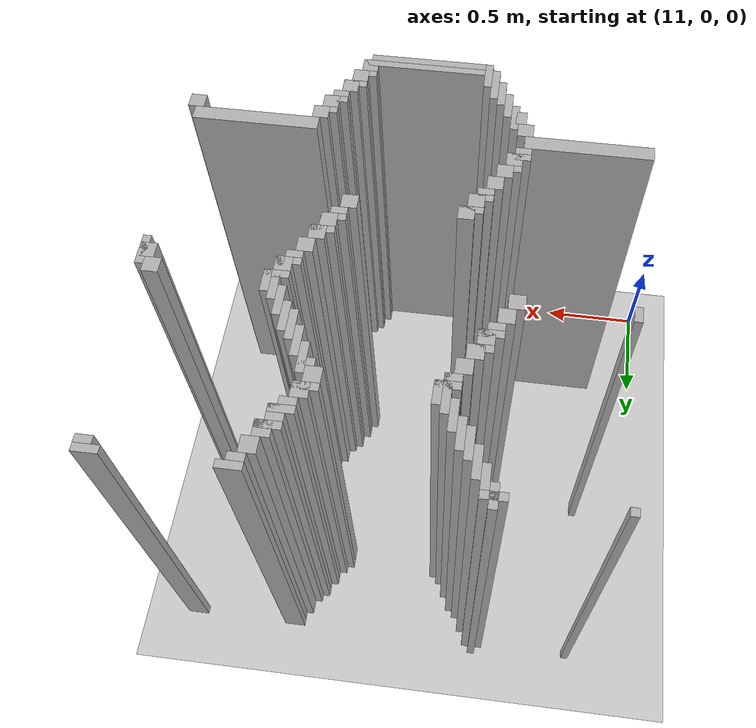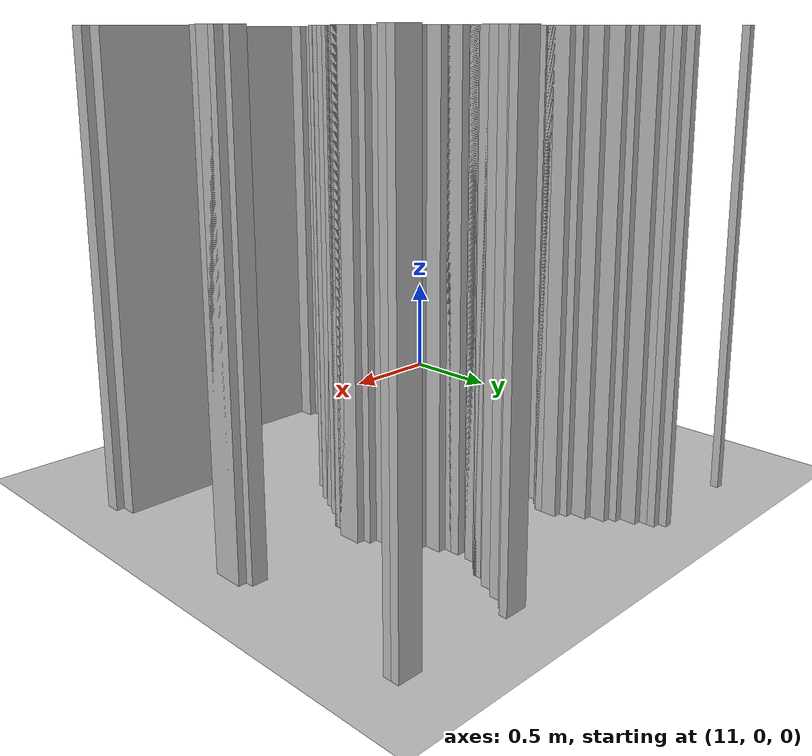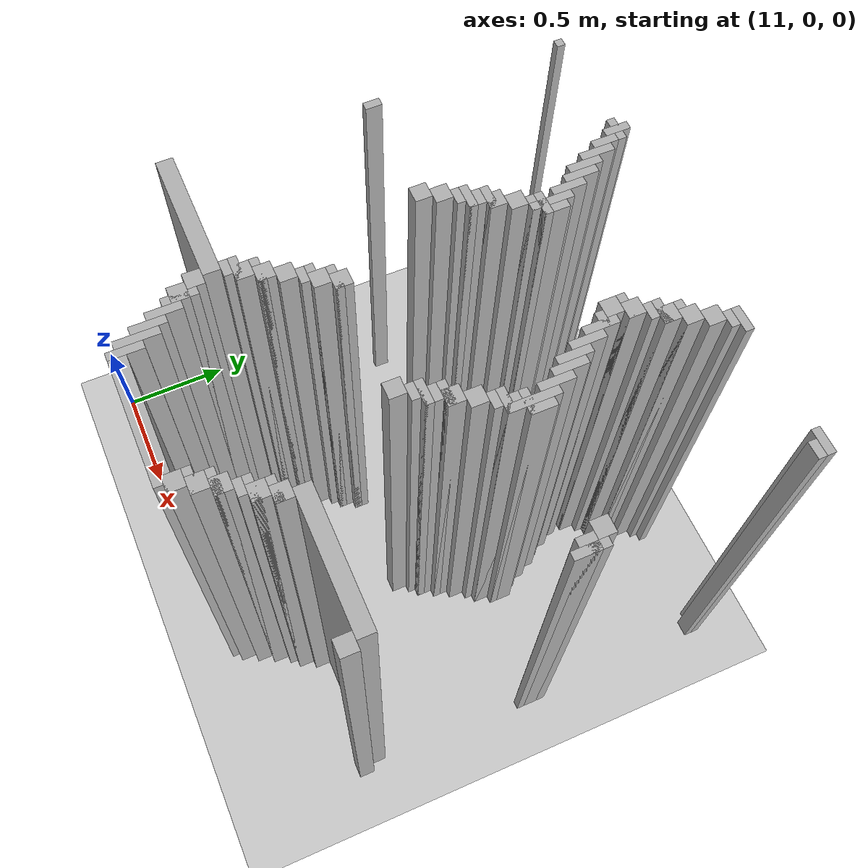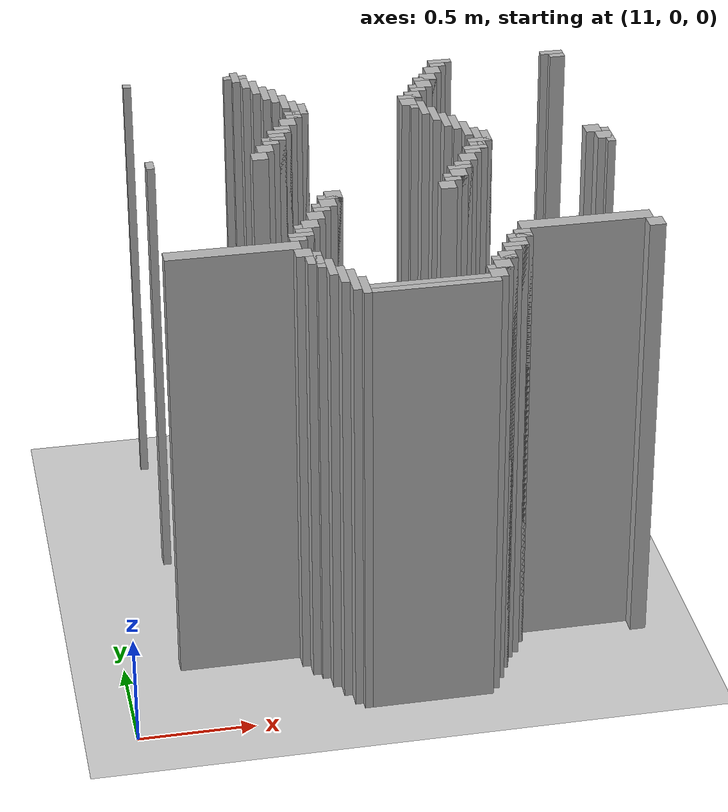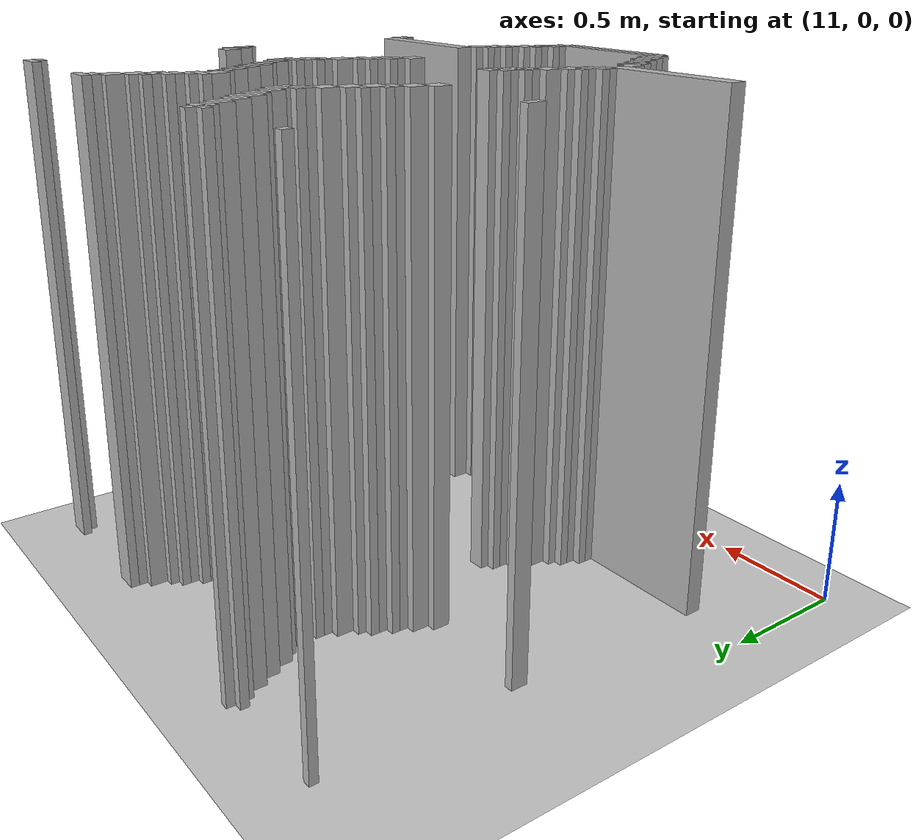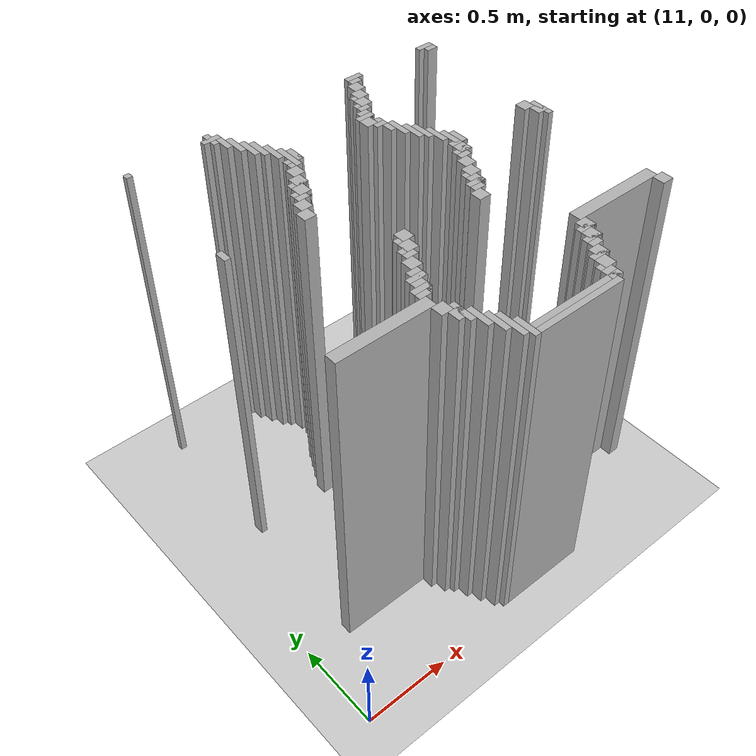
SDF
<sdf version="1.6">
 <world name="slam_world">
  <model name="ground_plane">
   <static>true</static>
   <link name="link">
    <collision name="collision">
     <geometry><plane><normal>0 0 1</normal><size>100 100</size></plane></geometry>
    </collision>
    <visual name="visual">
     <geometry><plane><normal>0 0 1</normal><size>100 100</size></plane></geometry>
     <material>
      <ambient>0.8 0.8 0.8 1</ambient>
      <diffuse>0.8 0.8 0.8 1</diffuse>
      <specular>0.8 0.8 0.8 1</specular>
     </material>
    </visual>
   </link>
  </model>
  <model name="wall_5012">
   <static>true</static>
   <pose>11.780742459396752 2.140371229698376 1.0 0 0 0</pose>
   <link name="link">
    <collision name="collision">
     <geometry><box><size>0.03480278422273782 0.10440835266821345 2.0</size></box></geometry>
    </collision>
    <visual name="visual">
     <geometry><box><size>0.03480278422273782 0.10440835266821345 2.0</size></box></geometry>
     <material><ambient>0.5 0.5 0.5 1</ambient><diffuse>0.7 0.7 0.7 1</diffuse></material>
    </visual>
   </link>
  </model>
  <model name="wall_5026">
   <static>true</static>
   <pose>11.293503480278423 2.140371229698376 1.0 0 0 0</pose>
   <link name="link">
    <collision name="collision">
     <geometry><box><size>0.03480278422273782 0.03480278422273782 2.0</size></box></geometry>
    </collision>
    <visual name="visual">
     <geometry><box><size>0.03480278422273782 0.03480278422273782 2.0</size></box></geometry>
     <material><ambient>0.5 0.5 0.5 1</ambient><diffuse>0.7 0.7 0.7 1</diffuse></material>
    </visual>
   </link>
  </model>
  <model name="wall_5027">
   <static>true</static>
   <pose>11.780742459396752 2.140371229698376 1.0 0 0 0</pose>
   <link name="link">
    <collision name="collision">
     <geometry><box><size>0.10440835266821345 0.03480278422273782 2.0</size></box></geometry>
    </collision>
    <visual name="visual">
     <geometry><box><size>0.10440835266821345 0.03480278422273782 2.0</size></box></geometry>
     <material><ambient>0.5 0.5 0.5 1</ambient><diffuse>0.7 0.7 0.7 1</diffuse></material>
    </visual>
   </link>
  </model>
  <model name="wall_5028">
   <static>true</static>
   <pose>12.720417633410673 2.140371229698376 1.0 0 0 0</pose>
   <link name="link">
    <collision name="collision">
     <geometry><box><size>0.10440835266821345 0.03480278422273782 2.0</size></box></geometry>
    </collision>
    <visual name="visual">
     <geometry><box><size>0.10440835266821345 0.03480278422273782 2.0</size></box></geometry>
     <material><ambient>0.5 0.5 0.5 1</ambient><diffuse>0.7 0.7 0.7 1</diffuse></material>
    </visual>
   </link>
  </model>
  <model name="wall_5029">
   <static>true</static>
   <pose>13.24245939675174 2.140371229698376 1.0 0 0 0</pose>
   <link name="link">
    <collision name="collision">
     <geometry><box><size>0.10440835266821345 0.03480278422273782 2.0</size></box></geometry>
    </collision>
    <visual name="visual">
     <geometry><box><size>0.10440835266821345 0.03480278422273782 2.0</size></box></geometry>
     <material><ambient>0.5 0.5 0.5 1</ambient><diffuse>0.7 0.7 0.7 1</diffuse></material>
    </visual>
   </link>
  </model>
  <model name="wall_5040">
   <static>true</static>
   <pose>11.81554524361949 2.0707656612529 1.0 0 0 0</pose>
   <link name="link">
    <collision name="collision">
     <geometry><box><size>0.03480278422273782 0.10440835266821345 2.0</size></box></geometry>
    </collision>
    <visual name="visual">
     <geometry><box><size>0.03480278422273782 0.10440835266821345 2.0</size></box></geometry>
     <material><ambient>0.5 0.5 0.5 1</ambient><diffuse>0.7 0.7 0.7 1</diffuse></material>
    </visual>
   </link>
  </model>
  <model name="wall_5041">
   <static>true</static>
   <pose>12.703016241299304 2.105568445475638 1.0 0 0 0</pose>
   <link name="link">
    <collision name="collision">
     <geometry><box><size>0.06960556844547564 0.03480278422273782 2.0</size></box></geometry>
    </collision>
    <visual name="visual">
     <geometry><box><size>0.06960556844547564 0.03480278422273782 2.0</size></box></geometry>
     <material><ambient>0.5 0.5 0.5 1</ambient><diffuse>0.7 0.7 0.7 1</diffuse></material>
    </visual>
   </link>
  </model>
  <model name="wall_5042">
   <static>true</static>
   <pose>13.259860788863108 2.105568445475638 1.0 0 0 0</pose>
   <link name="link">
    <collision name="collision">
     <geometry><box><size>0.06960556844547564 0.03480278422273782 2.0</size></box></geometry>
    </collision>
    <visual name="visual">
     <geometry><box><size>0.06960556844547564 0.03480278422273782 2.0</size></box></geometry>
     <material><ambient>0.5 0.5 0.5 1</ambient><diffuse>0.7 0.7 0.7 1</diffuse></material>
    </visual>
   </link>
  </model>
  <model name="wall_5053">
   <static>true</static>
   <pose>11.850348027842227 2.0185614849187936 1.0 0 0 0</pose>
   <link name="link">
    <collision name="collision">
     <geometry><box><size>0.03480278422273782 0.13921113689095127 2.0</size></box></geometry>
    </collision>
    <visual name="visual">
     <geometry><box><size>0.03480278422273782 0.13921113689095127 2.0</size></box></geometry>
     <material><ambient>0.5 0.5 0.5 1</ambient><diffuse>0.7 0.7 0.7 1</diffuse></material>
    </visual>
   </link>
  </model>
  <model name="wall_5054">
   <static>true</static>
   <pose>12.668213457076565 2.053364269141531 1.0 0 0 0</pose>
   <link name="link">
    <collision name="collision">
     <geometry><box><size>0.06960556844547564 0.06960556844547564 2.0</size></box></geometry>
    </collision>
    <visual name="visual">
     <geometry><box><size>0.06960556844547564 0.06960556844547564 2.0</size></box></geometry>
     <material><ambient>0.5 0.5 0.5 1</ambient><diffuse>0.7 0.7 0.7 1</diffuse></material>
    </visual>
   </link>
  </model>
  <model name="wall_5066">
   <static>true</static>
   <pose>11.885150812064964 1.948955916473318 1.0 0 0 0</pose>
   <link name="link">
    <collision name="collision">
     <geometry><box><size>0.03480278422273782 0.13921113689095127 2.0</size></box></geometry>
    </collision>
    <visual name="visual">
     <geometry><box><size>0.03480278422273782 0.13921113689095127 2.0</size></box></geometry>
     <material><ambient>0.5 0.5 0.5 1</ambient><diffuse>0.7 0.7 0.7 1</diffuse></material>
    </visual>
   </link>
  </model>
  <model name="wall_5067">
   <static>true</static>
   <pose>12.633410672853827 1.9837587006960555 1.0 0 0 0</pose>
   <link name="link">
    <collision name="collision">
     <geometry><box><size>0.06960556844547564 0.06960556844547564 2.0</size></box></geometry>
    </collision>
    <visual name="visual">
     <geometry><box><size>0.06960556844547564 0.06960556844547564 2.0</size></box></geometry>
     <material><ambient>0.5 0.5 0.5 1</ambient><diffuse>0.7 0.7 0.7 1</diffuse></material>
    </visual>
   </link>
  </model>
  <model name="wall_5079">
   <static>true</static>
   <pose>11.919953596287703 1.91415313225058 1.0 0 0 0</pose>
   <link name="link">
    <collision name="collision">
     <geometry><box><size>0.03480278422273782 0.13921113689095127 2.0</size></box></geometry>
    </collision>
    <visual name="visual">
     <geometry><box><size>0.03480278422273782 0.13921113689095127 2.0</size></box></geometry>
     <material><ambient>0.5 0.5 0.5 1</ambient><diffuse>0.7 0.7 0.7 1</diffuse></material>
    </visual>
   </link>
  </model>
  <model name="wall_5080">
   <static>true</static>
   <pose>12.616009280742459 1.9663573085846866 1.0 0 0 0</pose>
   <link name="link">
    <collision name="collision">
     <geometry><box><size>0.10440835266821345 0.03480278422273782 2.0</size></box></geometry>
    </collision>
    <visual name="visual">
     <geometry><box><size>0.10440835266821345 0.03480278422273782 2.0</size></box></geometry>
     <material><ambient>0.5 0.5 0.5 1</ambient><diffuse>0.7 0.7 0.7 1</diffuse></material>
    </visual>
   </link>
  </model>
  <model name="wall_5090">
   <static>true</static>
   <pose>12.59860788863109 1.91415313225058 1.0 0 0 0</pose>
   <link name="link">
    <collision name="collision">
     <geometry><box><size>0.06960556844547564 0.06960556844547564 2.0</size></box></geometry>
    </collision>
    <visual name="visual">
     <geometry><box><size>0.06960556844547564 0.06960556844547564 2.0</size></box></geometry>
     <material><ambient>0.5 0.5 0.5 1</ambient><diffuse>0.7 0.7 0.7 1</diffuse></material>
    </visual>
   </link>
  </model>
  <model name="wall_5102">
   <static>true</static>
   <pose>11.95475638051044 1.8445475638051043 1.0 0 0 0</pose>
   <link name="link">
    <collision name="collision">
     <geometry><box><size>0.03480278422273782 0.13921113689095127 2.0</size></box></geometry>
    </collision>
    <visual name="visual">
     <geometry><box><size>0.03480278422273782 0.13921113689095127 2.0</size></box></geometry>
     <material><ambient>0.5 0.5 0.5 1</ambient><diffuse>0.7 0.7 0.7 1</diffuse></material>
    </visual>
   </link>
  </model>
  <model name="wall_5103">
   <static>true</static>
   <pose>12.581206496519721 1.896751740139211 1.0 0 0 0</pose>
   <link name="link">
    <collision name="collision">
     <geometry><box><size>0.10440835266821345 0.03480278422273782 2.0</size></box></geometry>
    </collision>
    <visual name="visual">
     <geometry><box><size>0.10440835266821345 0.03480278422273782 2.0</size></box></geometry>
     <material><ambient>0.5 0.5 0.5 1</ambient><diffuse>0.7 0.7 0.7 1</diffuse></material>
    </visual>
   </link>
  </model>
  <model name="wall_5111">
   <static>true</static>
   <pose>12.563805104408353 1.8619489559164732 1.0 0 0 0</pose>
   <link name="link">
    <collision name="collision">
     <geometry><box><size>0.06960556844547564 0.03480278422273782 2.0</size></box></geometry>
    </collision>
    <visual name="visual">
     <geometry><box><size>0.06960556844547564 0.03480278422273782 2.0</size></box></geometry>
     <material><ambient>0.5 0.5 0.5 1</ambient><diffuse>0.7 0.7 0.7 1</diffuse></material>
    </visual>
   </link>
  </model>
  <model name="wall_5121">
   <static>true</static>
   <pose>11.989559164733178 1.75754060324826 1.0 0 0 0</pose>
   <link name="link">
    <collision name="collision">
     <geometry><box><size>0.03480278422273782 0.17401392111368907 2.0</size></box></geometry>
    </collision>
    <visual name="visual">
     <geometry><box><size>0.03480278422273782 0.17401392111368907 2.0</size></box></geometry>
     <material><ambient>0.5 0.5 0.5 1</ambient><diffuse>0.7 0.7 0.7 1</diffuse></material>
    </visual>
   </link>
  </model>
  <model name="wall_5122">
   <static>true</static>
   <pose>12.529002320185615 1.8097447795823665 1.0 0 0 0</pose>
   <link name="link">
    <collision name="collision">
     <geometry><box><size>0.06960556844547564 0.06960556844547564 2.0</size></box></geometry>
    </collision>
    <visual name="visual">
     <geometry><box><size>0.06960556844547564 0.06960556844547564 2.0</size></box></geometry>
     <material><ambient>0.5 0.5 0.5 1</ambient><diffuse>0.7 0.7 0.7 1</diffuse></material>
    </visual>
   </link>
  </model>
  <model name="wall_5134">
   <static>true</static>
   <pose>12.024361948955915 1.75754060324826 1.0 0 0 0</pose>
   <link name="link">
    <collision name="collision">
     <geometry><box><size>0.03480278422273782 0.10440835266821345 2.0</size></box></geometry>
    </collision>
    <visual name="visual">
     <geometry><box><size>0.03480278422273782 0.10440835266821345 2.0</size></box></geometry>
     <material><ambient>0.5 0.5 0.5 1</ambient><diffuse>0.7 0.7 0.7 1</diffuse></material>
    </visual>
   </link>
  </model>
  <model name="wall_5135">
   <static>true</static>
   <pose>12.511600928074245 1.7923433874709975 1.0 0 0 0</pose>
   <link name="link">
    <collision name="collision">
     <geometry><box><size>0.10440835266821345 0.03480278422273782 2.0</size></box></geometry>
    </collision>
    <visual name="visual">
     <geometry><box><size>0.10440835266821345 0.03480278422273782 2.0</size></box></geometry>
     <material><ambient>0.5 0.5 0.5 1</ambient><diffuse>0.7 0.7 0.7 1</diffuse></material>
    </visual>
   </link>
  </model>
  <model name="wall_5147">
   <static>true</static>
   <pose>12.494199535962876 1.740139211136891 1.0 0 0 0</pose>
   <link name="link">
    <collision name="collision">
     <geometry><box><size>0.06960556844547564 0.06960556844547564 2.0</size></box></geometry>
    </collision>
    <visual name="visual">
     <geometry><box><size>0.06960556844547564 0.06960556844547564 2.0</size></box></geometry>
     <material><ambient>0.5 0.5 0.5 1</ambient><diffuse>0.7 0.7 0.7 1</diffuse></material>
    </visual>
   </link>
  </model>
  <model name="wall_5158">
   <static>true</static>
   <pose>11.989559164733178 1.722737819025522 1.0 0 0 0</pose>
   <link name="link">
    <collision name="collision">
     <geometry><box><size>0.10440835266821345 0.03480278422273782 2.0</size></box></geometry>
    </collision>
    <visual name="visual">
     <geometry><box><size>0.10440835266821345 0.03480278422273782 2.0</size></box></geometry>
     <material><ambient>0.5 0.5 0.5 1</ambient><diffuse>0.7 0.7 0.7 1</diffuse></material>
    </visual>
   </link>
  </model>
  <model name="wall_5159">
   <static>true</static>
   <pose>12.546403712296984 1.6705336426914152 1.0 0 0 0</pose>
   <link name="link">
    <collision name="collision">
     <geometry><box><size>0.03480278422273782 0.13921113689095127 2.0</size></box></geometry>
    </collision>
    <visual name="visual">
     <geometry><box><size>0.03480278422273782 0.13921113689095127 2.0</size></box></geometry>
     <material><ambient>0.5 0.5 0.5 1</ambient><diffuse>0.7 0.7 0.7 1</diffuse></material>
    </visual>
   </link>
  </model>
  <model name="wall_5174">
   <static>true</static>
   <pose>11.97215777262181 1.6879350348027842 1.0 0 0 0</pose>
   <link name="link">
    <collision name="collision">
     <geometry><box><size>0.06960556844547564 0.03480278422273782 2.0</size></box></geometry>
    </collision>
    <visual name="visual">
     <geometry><box><size>0.06960556844547564 0.03480278422273782 2.0</size></box></geometry>
     <material><ambient>0.5 0.5 0.5 1</ambient><diffuse>0.7 0.7 0.7 1</diffuse></material>
    </visual>
   </link>
  </model>
  <model name="wall_5175">
   <static>true</static>
   <pose>12.529002320185615 1.6879350348027842 1.0 0 0 0</pose>
   <link name="link">
    <collision name="collision">
     <geometry><box><size>0.06960556844547564 0.03480278422273782 2.0</size></box></geometry>
    </collision>
    <visual name="visual">
     <geometry><box><size>0.06960556844547564 0.03480278422273782 2.0</size></box></geometry>
     <material><ambient>0.5 0.5 0.5 1</ambient><diffuse>0.7 0.7 0.7 1</diffuse></material>
    </visual>
   </link>
  </model>
  <model name="wall_5190">
   <static>true</static>
   <pose>11.937354988399072 1.6357308584686774 1.0 0 0 0</pose>
   <link name="link">
    <collision name="collision">
     <geometry><box><size>0.06960556844547564 0.06960556844547564 2.0</size></box></geometry>
    </collision>
    <visual name="visual">
     <geometry><box><size>0.06960556844547564 0.06960556844547564 2.0</size></box></geometry>
     <material><ambient>0.5 0.5 0.5 1</ambient><diffuse>0.7 0.7 0.7 1</diffuse></material>
    </visual>
   </link>
  </model>
  <model name="wall_5191">
   <static>true</static>
   <pose>12.581206496519721 1.6009280742459395 1.0 0 0 0</pose>
   <link name="link">
    <collision name="collision">
     <geometry><box><size>0.03480278422273782 0.13921113689095127 2.0</size></box></geometry>
    </collision>
    <visual name="visual">
     <geometry><box><size>0.03480278422273782 0.13921113689095127 2.0</size></box></geometry>
     <material><ambient>0.5 0.5 0.5 1</ambient><diffuse>0.7 0.7 0.7 1</diffuse></material>
    </visual>
   </link>
  </model>
  <model name="wall_5206">
   <static>true</static>
   <pose>11.902552204176333 1.5661252900232019 1.0 0 0 0</pose>
   <link name="link">
    <collision name="collision">
     <geometry><box><size>0.06960556844547564 0.06960556844547564 2.0</size></box></geometry>
    </collision>
    <visual name="visual">
     <geometry><box><size>0.06960556844547564 0.06960556844547564 2.0</size></box></geometry>
     <material><ambient>0.5 0.5 0.5 1</ambient><diffuse>0.7 0.7 0.7 1</diffuse></material>
    </visual>
   </link>
  </model>
  <model name="wall_5207">
   <static>true</static>
   <pose>12.616009280742459 1.531322505800464 1.0 0 0 0</pose>
   <link name="link">
    <collision name="collision">
     <geometry><box><size>0.03480278422273782 0.13921113689095127 2.0</size></box></geometry>
    </collision>
    <visual name="visual">
     <geometry><box><size>0.03480278422273782 0.13921113689095127 2.0</size></box></geometry>
     <material><ambient>0.5 0.5 0.5 1</ambient><diffuse>0.7 0.7 0.7 1</diffuse></material>
    </visual>
   </link>
  </model>
  <model name="wall_5222">
   <static>true</static>
   <pose>11.885150812064964 1.548723897911833 1.0 0 0 0</pose>
   <link name="link">
    <collision name="collision">
     <geometry><box><size>0.10440835266821345 0.03480278422273782 2.0</size></box></geometry>
    </collision>
    <visual name="visual">
     <geometry><box><size>0.10440835266821345 0.03480278422273782 2.0</size></box></geometry>
     <material><ambient>0.5 0.5 0.5 1</ambient><diffuse>0.7 0.7 0.7 1</diffuse></material>
    </visual>
   </link>
  </model>
  <model name="wall_5223">
   <static>true</static>
   <pose>12.650812064965196 1.4965197215777262 1.0 0 0 0</pose>
   <link name="link">
    <collision name="collision">
     <geometry><box><size>0.03480278422273782 0.13921113689095127 2.0</size></box></geometry>
    </collision>
    <visual name="visual">
     <geometry><box><size>0.03480278422273782 0.13921113689095127 2.0</size></box></geometry>
     <material><ambient>0.5 0.5 0.5 1</ambient><diffuse>0.7 0.7 0.7 1</diffuse></material>
    </visual>
   </link>
  </model>
  <model name="wall_5237">
   <static>true</static>
   <pose>11.867749419953595 1.4965197215777262 1.0 0 0 0</pose>
   <link name="link">
    <collision name="collision">
     <geometry><box><size>0.06960556844547564 0.06960556844547564 2.0</size></box></geometry>
    </collision>
    <visual name="visual">
     <geometry><box><size>0.06960556844547564 0.06960556844547564 2.0</size></box></geometry>
     <material><ambient>0.5 0.5 0.5 1</ambient><diffuse>0.7 0.7 0.7 1</diffuse></material>
    </visual>
   </link>
  </model>
  <model name="wall_5251">
   <static>true</static>
   <pose>11.850348027842227 1.4791183294663572 1.0 0 0 0</pose>
   <link name="link">
    <collision name="collision">
     <geometry><box><size>0.10440835266821345 0.03480278422273782 2.0</size></box></geometry>
    </collision>
    <visual name="visual">
     <geometry><box><size>0.10440835266821345 0.03480278422273782 2.0</size></box></geometry>
     <material><ambient>0.5 0.5 0.5 1</ambient><diffuse>0.7 0.7 0.7 1</diffuse></material>
    </visual>
   </link>
  </model>
  <model name="wall_5252">
   <static>true</static>
   <pose>12.685614849187935 1.4269141531322505 1.0 0 0 0</pose>
   <link name="link">
    <collision name="collision">
     <geometry><box><size>0.03480278422273782 0.13921113689095127 2.0</size></box></geometry>
    </collision>
    <visual name="visual">
     <geometry><box><size>0.03480278422273782 0.13921113689095127 2.0</size></box></geometry>
     <material><ambient>0.5 0.5 0.5 1</ambient><diffuse>0.7 0.7 0.7 1</diffuse></material>
    </visual>
   </link>
  </model>
  <model name="wall_5263">
   <static>true</static>
   <pose>11.832946635730858 1.4443155452436194 1.0 0 0 0</pose>
   <link name="link">
    <collision name="collision">
     <geometry><box><size>0.06960556844547564 0.03480278422273782 2.0</size></box></geometry>
    </collision>
    <visual name="visual">
     <geometry><box><size>0.06960556844547564 0.03480278422273782 2.0</size></box></geometry>
     <material><ambient>0.5 0.5 0.5 1</ambient><diffuse>0.7 0.7 0.7 1</diffuse></material>
    </visual>
   </link>
  </model>
  <model name="wall_5277">
   <static>true</static>
   <pose>11.79814385150812 1.3921113689095126 1.0 0 0 0</pose>
   <link name="link">
    <collision name="collision">
     <geometry><box><size>0.06960556844547564 0.06960556844547564 2.0</size></box></geometry>
    </collision>
    <visual name="visual">
     <geometry><box><size>0.06960556844547564 0.06960556844547564 2.0</size></box></geometry>
     <material><ambient>0.5 0.5 0.5 1</ambient><diffuse>0.7 0.7 0.7 1</diffuse></material>
    </visual>
   </link>
  </model>
  <model name="wall_5278">
   <static>true</static>
   <pose>12.720417633410673 1.322505800464037 1.0 0 0 0</pose>
   <link name="link">
    <collision name="collision">
     <geometry><box><size>0.03480278422273782 0.2088167053364269 2.0</size></box></geometry>
    </collision>
    <visual name="visual">
     <geometry><box><size>0.03480278422273782 0.2088167053364269 2.0</size></box></geometry>
     <material><ambient>0.5 0.5 0.5 1</ambient><diffuse>0.7 0.7 0.7 1</diffuse></material>
    </visual>
   </link>
  </model>
  <model name="wall_5290">
   <static>true</static>
   <pose>12.75522041763341 1.339907192575406 1.0 0 0 0</pose>
   <link name="link">
    <collision name="collision">
     <geometry><box><size>0.03480278422273782 0.10440835266821345 2.0</size></box></geometry>
    </collision>
    <visual name="visual">
     <geometry><box><size>0.03480278422273782 0.10440835266821345 2.0</size></box></geometry>
     <material><ambient>0.5 0.5 0.5 1</ambient><diffuse>0.7 0.7 0.7 1</diffuse></material>
    </visual>
   </link>
  </model>
  <model name="wall_5302">
   <static>true</static>
   <pose>11.293503480278423 1.322505800464037 1.0 0 0 0</pose>
   <link name="link">
    <collision name="collision">
     <geometry><box><size>0.03480278422273782 0.06960556844547564 2.0</size></box></geometry>
    </collision>
    <visual name="visual">
     <geometry><box><size>0.03480278422273782 0.06960556844547564 2.0</size></box></geometry>
     <material><ambient>0.5 0.5 0.5 1</ambient><diffuse>0.7 0.7 0.7 1</diffuse></material>
    </visual>
   </link>
  </model>
  <model name="wall_5303">
   <static>true</static>
   <pose>11.763341067285383 1.322505800464037 1.0 0 0 0</pose>
   <link name="link">
    <collision name="collision">
     <geometry><box><size>0.06960556844547564 0.06960556844547564 2.0</size></box></geometry>
    </collision>
    <visual name="visual">
     <geometry><box><size>0.06960556844547564 0.06960556844547564 2.0</size></box></geometry>
     <material><ambient>0.5 0.5 0.5 1</ambient><diffuse>0.7 0.7 0.7 1</diffuse></material>
    </visual>
   </link>
  </model>
  <model name="wall_5304">
   <static>true</static>
   <pose>13.22505800464037 1.322505800464037 1.0 0 0 0</pose>
   <link name="link">
    <collision name="collision">
     <geometry><box><size>0.06960556844547564 0.06960556844547564 2.0</size></box></geometry>
    </collision>
    <visual name="visual">
     <geometry><box><size>0.06960556844547564 0.06960556844547564 2.0</size></box></geometry>
     <material><ambient>0.5 0.5 0.5 1</ambient><diffuse>0.7 0.7 0.7 1</diffuse></material>
    </visual>
   </link>
  </model>
  <model name="wall_5314">
   <static>true</static>
   <pose>12.720417633410673 1.3051044083526682 1.0 0 0 0</pose>
   <link name="link">
    <collision name="collision">
     <geometry><box><size>0.10440835266821345 0.03480278422273782 2.0</size></box></geometry>
    </collision>
    <visual name="visual">
     <geometry><box><size>0.10440835266821345 0.03480278422273782 2.0</size></box></geometry>
     <material><ambient>0.5 0.5 0.5 1</ambient><diffuse>0.7 0.7 0.7 1</diffuse></material>
    </visual>
   </link>
  </model>
  <model name="wall_5315">
   <static>true</static>
   <pose>13.277262180974477 1.2529002320185614 1.0 0 0 0</pose>
   <link name="link">
    <collision name="collision">
     <geometry><box><size>0.03480278422273782 0.13921113689095127 2.0</size></box></geometry>
    </collision>
    <visual name="visual">
     <geometry><box><size>0.03480278422273782 0.13921113689095127 2.0</size></box></geometry>
     <material><ambient>0.5 0.5 0.5 1</ambient><diffuse>0.7 0.7 0.7 1</diffuse></material>
    </visual>
   </link>
  </model>
  <model name="wall_5327">
   <static>true</static>
   <pose>12.703016241299304 1.2529002320185614 1.0 0 0 0</pose>
   <link name="link">
    <collision name="collision">
     <geometry><box><size>0.06960556844547564 0.06960556844547564 2.0</size></box></geometry>
    </collision>
    <visual name="visual">
     <geometry><box><size>0.06960556844547564 0.06960556844547564 2.0</size></box></geometry>
     <material><ambient>0.5 0.5 0.5 1</ambient><diffuse>0.7 0.7 0.7 1</diffuse></material>
    </visual>
   </link>
  </model>
  <model name="wall_5328">
   <static>true</static>
   <pose>13.259860788863108 1.2529002320185614 1.0 0 0 0</pose>
   <link name="link">
    <collision name="collision">
     <geometry><box><size>0.06960556844547564 0.06960556844547564 2.0</size></box></geometry>
    </collision>
    <visual name="visual">
     <geometry><box><size>0.06960556844547564 0.06960556844547564 2.0</size></box></geometry>
     <material><ambient>0.5 0.5 0.5 1</ambient><diffuse>0.7 0.7 0.7 1</diffuse></material>
    </visual>
   </link>
  </model>
  <model name="wall_5341">
   <static>true</static>
   <pose>12.685614849187935 1.2354988399071924 1.0 0 0 0</pose>
   <link name="link">
    <collision name="collision">
     <geometry><box><size>0.10440835266821345 0.03480278422273782 2.0</size></box></geometry>
    </collision>
    <visual name="visual">
     <geometry><box><size>0.10440835266821345 0.03480278422273782 2.0</size></box></geometry>
     <material><ambient>0.5 0.5 0.5 1</ambient><diffuse>0.7 0.7 0.7 1</diffuse></material>
    </visual>
   </link>
  </model>
  <model name="wall_5351">
   <static>true</static>
   <pose>12.668213457076565 1.2006960556844548 1.0 0 0 0</pose>
   <link name="link">
    <collision name="collision">
     <geometry><box><size>0.06960556844547564 0.03480278422273782 2.0</size></box></geometry>
    </collision>
    <visual name="visual">
     <geometry><box><size>0.06960556844547564 0.03480278422273782 2.0</size></box></geometry>
     <material><ambient>0.5 0.5 0.5 1</ambient><diffuse>0.7 0.7 0.7 1</diffuse></material>
    </visual>
   </link>
  </model>
  <model name="wall_5364">
   <static>true</static>
   <pose>12.633410672853827 1.148491879350348 1.0 0 0 0</pose>
   <link name="link">
    <collision name="collision">
     <geometry><box><size>0.06960556844547564 0.06960556844547564 2.0</size></box></geometry>
    </collision>
    <visual name="visual">
     <geometry><box><size>0.06960556844547564 0.06960556844547564 2.0</size></box></geometry>
     <material><ambient>0.5 0.5 0.5 1</ambient><diffuse>0.7 0.7 0.7 1</diffuse></material>
    </visual>
   </link>
  </model>
  <model name="wall_5378">
   <static>true</static>
   <pose>12.59860788863109 1.0788863109048723 1.0 0 0 0</pose>
   <link name="link">
    <collision name="collision">
     <geometry><box><size>0.06960556844547564 0.06960556844547564 2.0</size></box></geometry>
    </collision>
    <visual name="visual">
     <geometry><box><size>0.06960556844547564 0.06960556844547564 2.0</size></box></geometry>
     <material><ambient>0.5 0.5 0.5 1</ambient><diffuse>0.7 0.7 0.7 1</diffuse></material>
    </visual>
   </link>
  </model>
  <model name="wall_5392">
   <static>true</static>
   <pose>12.581206496519721 1.0614849187935034 1.0 0 0 0</pose>
   <link name="link">
    <collision name="collision">
     <geometry><box><size>0.10440835266821345 0.03480278422273782 2.0</size></box></geometry>
    </collision>
    <visual name="visual">
     <geometry><box><size>0.10440835266821345 0.03480278422273782 2.0</size></box></geometry>
     <material><ambient>0.5 0.5 0.5 1</ambient><diffuse>0.7 0.7 0.7 1</diffuse></material>
    </visual>
   </link>
  </model>
  <model name="wall_5400">
   <static>true</static>
   <pose>12.563805104408353 1.0092807424593968 1.0 0 0 0</pose>
   <link name="link">
    <collision name="collision">
     <geometry><box><size>0.06960556844547564 0.06960556844547564 2.0</size></box></geometry>
    </collision>
    <visual name="visual">
     <geometry><box><size>0.06960556844547564 0.06960556844547564 2.0</size></box></geometry>
     <material><ambient>0.5 0.5 0.5 1</ambient><diffuse>0.7 0.7 0.7 1</diffuse></material>
    </visual>
   </link>
  </model>
  <model name="wall_5412">
   <static>true</static>
   <pose>12.546403712296984 0.9918793503480278 1.0 0 0 0</pose>
   <link name="link">
    <collision name="collision">
     <geometry><box><size>0.10440835266821345 0.03480278422273782 2.0</size></box></geometry>
    </collision>
    <visual name="visual">
     <geometry><box><size>0.10440835266821345 0.03480278422273782 2.0</size></box></geometry>
     <material><ambient>0.5 0.5 0.5 1</ambient><diffuse>0.7 0.7 0.7 1</diffuse></material>
    </visual>
   </link>
  </model>
  <model name="wall_5420">
   <static>true</static>
   <pose>12.529002320185615 0.95707656612529 1.0 0 0 0</pose>
   <link name="link">
    <collision name="collision">
     <geometry><box><size>0.06960556844547564 0.03480278422273782 2.0</size></box></geometry>
    </collision>
    <visual name="visual">
     <geometry><box><size>0.06960556844547564 0.03480278422273782 2.0</size></box></geometry>
     <material><ambient>0.5 0.5 0.5 1</ambient><diffuse>0.7 0.7 0.7 1</diffuse></material>
    </visual>
   </link>
  </model>
  <model name="wall_5433">
   <static>true</static>
   <pose>12.006960556844547 0.9048723897911832 1.0 0 0 0</pose>
   <link name="link">
    <collision name="collision">
     <geometry><box><size>0.06960556844547564 0.06960556844547564 2.0</size></box></geometry>
    </collision>
    <visual name="visual">
     <geometry><box><size>0.06960556844547564 0.06960556844547564 2.0</size></box></geometry>
     <material><ambient>0.5 0.5 0.5 1</ambient><diffuse>0.7 0.7 0.7 1</diffuse></material>
    </visual>
   </link>
  </model>
  <model name="wall_5434">
   <static>true</static>
   <pose>12.494199535962876 0.9048723897911832 1.0 0 0 0</pose>
   <link name="link">
    <collision name="collision">
     <geometry><box><size>0.06960556844547564 0.06960556844547564 2.0</size></box></geometry>
    </collision>
    <visual name="visual">
     <geometry><box><size>0.06960556844547564 0.06960556844547564 2.0</size></box></geometry>
     <material><ambient>0.5 0.5 0.5 1</ambient><diffuse>0.7 0.7 0.7 1</diffuse></material>
    </visual>
   </link>
  </model>
  <model name="wall_5445">
   <static>true</static>
   <pose>11.989559164733178 0.8874709976798143 1.0 0 0 0</pose>
   <link name="link">
    <collision name="collision">
     <geometry><box><size>0.10440835266821345 0.03480278422273782 2.0</size></box></geometry>
    </collision>
    <visual name="visual">
     <geometry><box><size>0.10440835266821345 0.03480278422273782 2.0</size></box></geometry>
     <material><ambient>0.5 0.5 0.5 1</ambient><diffuse>0.7 0.7 0.7 1</diffuse></material>
    </visual>
   </link>
  </model>
  <model name="wall_5455">
   <static>true</static>
   <pose>11.97215777262181 0.8352668213457076 1.0 0 0 0</pose>
   <link name="link">
    <collision name="collision">
     <geometry><box><size>0.06960556844547564 0.06960556844547564 2.0</size></box></geometry>
    </collision>
    <visual name="visual">
     <geometry><box><size>0.06960556844547564 0.06960556844547564 2.0</size></box></geometry>
     <material><ambient>0.5 0.5 0.5 1</ambient><diffuse>0.7 0.7 0.7 1</diffuse></material>
    </visual>
   </link>
  </model>
  <model name="wall_5465">
   <static>true</static>
   <pose>11.95475638051044 0.8178654292343387 1.0 0 0 0</pose>
   <link name="link">
    <collision name="collision">
     <geometry><box><size>0.10440835266821345 0.03480278422273782 2.0</size></box></geometry>
    </collision>
    <visual name="visual">
     <geometry><box><size>0.10440835266821345 0.03480278422273782 2.0</size></box></geometry>
     <material><ambient>0.5 0.5 0.5 1</ambient><diffuse>0.7 0.7 0.7 1</diffuse></material>
    </visual>
   </link>
  </model>
  <model name="wall_5471">
   <static>true</static>
   <pose>11.937354988399072 0.7830626450116009 1.0 0 0 0</pose>
   <link name="link">
    <collision name="collision">
     <geometry><box><size>0.06960556844547564 0.03480278422273782 2.0</size></box></geometry>
    </collision>
    <visual name="visual">
     <geometry><box><size>0.06960556844547564 0.03480278422273782 2.0</size></box></geometry>
     <material><ambient>0.5 0.5 0.5 1</ambient><diffuse>0.7 0.7 0.7 1</diffuse></material>
    </visual>
   </link>
  </model>
  <model name="wall_5481">
   <static>true</static>
   <pose>11.902552204176333 0.7308584686774942 1.0 0 0 0</pose>
   <link name="link">
    <collision name="collision">
     <geometry><box><size>0.06960556844547564 0.06960556844547564 2.0</size></box></geometry>
    </collision>
    <visual name="visual">
     <geometry><box><size>0.06960556844547564 0.06960556844547564 2.0</size></box></geometry>
     <material><ambient>0.5 0.5 0.5 1</ambient><diffuse>0.7 0.7 0.7 1</diffuse></material>
    </visual>
   </link>
  </model>
  <model name="wall_5491">
   <static>true</static>
   <pose>11.867749419953595 0.6612529002320185 1.0 0 0 0</pose>
   <link name="link">
    <collision name="collision">
     <geometry><box><size>0.06960556844547564 0.06960556844547564 2.0</size></box></geometry>
    </collision>
    <visual name="visual">
     <geometry><box><size>0.06960556844547564 0.06960556844547564 2.0</size></box></geometry>
     <material><ambient>0.5 0.5 0.5 1</ambient><diffuse>0.7 0.7 0.7 1</diffuse></material>
    </visual>
   </link>
  </model>
  <model name="wall_5501">
   <static>true</static>
   <pose>11.850348027842227 0.6438515081206496 1.0 0 0 0</pose>
   <link name="link">
    <collision name="collision">
     <geometry><box><size>0.10440835266821345 0.03480278422273782 2.0</size></box></geometry>
    </collision>
    <visual name="visual">
     <geometry><box><size>0.10440835266821345 0.03480278422273782 2.0</size></box></geometry>
     <material><ambient>0.5 0.5 0.5 1</ambient><diffuse>0.7 0.7 0.7 1</diffuse></material>
    </visual>
   </link>
  </model>
  <model name="wall_5507">
   <static>true</static>
   <pose>11.832946635730858 0.5916473317865429 1.0 0 0 0</pose>
   <link name="link">
    <collision name="collision">
     <geometry><box><size>0.06960556844547564 0.06960556844547564 2.0</size></box></geometry>
    </collision>
    <visual name="visual">
     <geometry><box><size>0.06960556844547564 0.06960556844547564 2.0</size></box></geometry>
     <material><ambient>0.5 0.5 0.5 1</ambient><diffuse>0.7 0.7 0.7 1</diffuse></material>
    </visual>
   </link>
  </model>
  <model name="wall_5517">
   <static>true</static>
   <pose>11.81554524361949 0.574245939675174 1.0 0 0 0</pose>
   <link name="link">
    <collision name="collision">
     <geometry><box><size>0.10440835266821345 0.03480278422273782 2.0</size></box></geometry>
    </collision>
    <visual name="visual">
     <geometry><box><size>0.10440835266821345 0.03480278422273782 2.0</size></box></geometry>
     <material><ambient>0.5 0.5 0.5 1</ambient><diffuse>0.7 0.7 0.7 1</diffuse></material>
    </visual>
   </link>
  </model>
  <model name="wall_5523">
   <static>true</static>
   <pose>11.79814385150812 0.5394431554524362 1.0 0 0 0</pose>
   <link name="link">
    <collision name="collision">
     <geometry><box><size>0.06960556844547564 0.03480278422273782 2.0</size></box></geometry>
    </collision>
    <visual name="visual">
     <geometry><box><size>0.06960556844547564 0.03480278422273782 2.0</size></box></geometry>
     <material><ambient>0.5 0.5 0.5 1</ambient><diffuse>0.7 0.7 0.7 1</diffuse></material>
    </visual>
   </link>
  </model>
  <model name="wall_5533">
   <static>true</static>
   <pose>11.519721577726218 0.4872389791183295 1.0 0 0 0</pose>
   <link name="link">
    <collision name="collision">
     <geometry><box><size>0.5568445475638051 0.06960556844547564 2.0</size></box></geometry>
    </collision>
    <visual name="visual">
     <geometry><box><size>0.5568445475638051 0.06960556844547564 2.0</size></box></geometry>
     <material><ambient>0.5 0.5 0.5 1</ambient><diffuse>0.7 0.7 0.7 1</diffuse></material>
    </visual>
   </link>
  </model>
  <model name="wall_5534">
   <static>true</static>
   <pose>12.981438515081207 0.4872389791183295 1.0 0 0 0</pose>
   <link name="link">
    <collision name="collision">
     <geometry><box><size>0.5568445475638051 0.06960556844547564 2.0</size></box></geometry>
    </collision>
    <visual name="visual">
     <geometry><box><size>0.5568445475638051 0.06960556844547564 2.0</size></box></geometry>
     <material><ambient>0.5 0.5 0.5 1</ambient><diffuse>0.7 0.7 0.7 1</diffuse></material>
    </visual>
   </link>
  </model>
  <model name="wall_5552">
   <static>true</static>
   <pose>11.79814385150812 0.4176334106728538 1.0 0 0 0</pose>
   <link name="link">
    <collision name="collision">
     <geometry><box><size>0.06960556844547564 0.06960556844547564 2.0</size></box></geometry>
    </collision>
    <visual name="visual">
     <geometry><box><size>0.06960556844547564 0.06960556844547564 2.0</size></box></geometry>
     <material><ambient>0.5 0.5 0.5 1</ambient><diffuse>0.7 0.7 0.7 1</diffuse></material>
    </visual>
   </link>
  </model>
  <model name="wall_5553">
   <static>true</static>
   <pose>12.703016241299304 0.4176334106728538 1.0 0 0 0</pose>
   <link name="link">
    <collision name="collision">
     <geometry><box><size>0.06960556844547564 0.06960556844547564 2.0</size></box></geometry>
    </collision>
    <visual name="visual">
     <geometry><box><size>0.06960556844547564 0.06960556844547564 2.0</size></box></geometry>
     <material><ambient>0.5 0.5 0.5 1</ambient><diffuse>0.7 0.7 0.7 1</diffuse></material>
    </visual>
   </link>
  </model>
  <model name="wall_5554">
   <static>true</static>
   <pose>13.259860788863108 0.4176334106728538 1.0 0 0 0</pose>
   <link name="link">
    <collision name="collision">
     <geometry><box><size>0.06960556844547564 0.06960556844547564 2.0</size></box></geometry>
    </collision>
    <visual name="visual">
     <geometry><box><size>0.06960556844547564 0.06960556844547564 2.0</size></box></geometry>
     <material><ambient>0.5 0.5 0.5 1</ambient><diffuse>0.7 0.7 0.7 1</diffuse></material>
    </visual>
   </link>
  </model>
  <model name="wall_5572">
   <static>true</static>
   <pose>11.850348027842227 0.34802784222737815 1.0 0 0 0</pose>
   <link name="link">
    <collision name="collision">
     <geometry><box><size>0.03480278422273782 0.13921113689095127 2.0</size></box></geometry>
    </collision>
    <visual name="visual">
     <geometry><box><size>0.03480278422273782 0.13921113689095127 2.0</size></box></geometry>
     <material><ambient>0.5 0.5 0.5 1</ambient><diffuse>0.7 0.7 0.7 1</diffuse></material>
    </visual>
   </link>
  </model>
  <model name="wall_5573">
   <static>true</static>
   <pose>12.685614849187935 0.4002320185614849 1.0 0 0 0</pose>
   <link name="link">
    <collision name="collision">
     <geometry><box><size>0.10440835266821345 0.03480278422273782 2.0</size></box></geometry>
    </collision>
    <visual name="visual">
     <geometry><box><size>0.10440835266821345 0.03480278422273782 2.0</size></box></geometry>
     <material><ambient>0.5 0.5 0.5 1</ambient><diffuse>0.7 0.7 0.7 1</diffuse></material>
    </visual>
   </link>
  </model>
  <model name="wall_5592">
   <static>true</static>
   <pose>11.832946635730858 0.34802784222737815 1.0 0 0 0</pose>
   <link name="link">
    <collision name="collision">
     <geometry><box><size>0.06960556844547564 0.06960556844547564 2.0</size></box></geometry>
    </collision>
    <visual name="visual">
     <geometry><box><size>0.06960556844547564 0.06960556844547564 2.0</size></box></geometry>
     <material><ambient>0.5 0.5 0.5 1</ambient><diffuse>0.7 0.7 0.7 1</diffuse></material>
    </visual>
   </link>
  </model>
  <model name="wall_5593">
   <static>true</static>
   <pose>12.668213457076565 0.34802784222737815 1.0 0 0 0</pose>
   <link name="link">
    <collision name="collision">
     <geometry><box><size>0.06960556844547564 0.06960556844547564 2.0</size></box></geometry>
    </collision>
    <visual name="visual">
     <geometry><box><size>0.06960556844547564 0.06960556844547564 2.0</size></box></geometry>
     <material><ambient>0.5 0.5 0.5 1</ambient><diffuse>0.7 0.7 0.7 1</diffuse></material>
    </visual>
   </link>
  </model>
  <model name="wall_5612">
   <static>true</static>
   <pose>11.885150812064964 0.27842227378190254 1.0 0 0 0</pose>
   <link name="link">
    <collision name="collision">
     <geometry><box><size>0.03480278422273782 0.13921113689095127 2.0</size></box></geometry>
    </collision>
    <visual name="visual">
     <geometry><box><size>0.03480278422273782 0.13921113689095127 2.0</size></box></geometry>
     <material><ambient>0.5 0.5 0.5 1</ambient><diffuse>0.7 0.7 0.7 1</diffuse></material>
    </visual>
   </link>
  </model>
  <model name="wall_5613">
   <static>true</static>
   <pose>12.650812064965196 0.3306264501160093 1.0 0 0 0</pose>
   <link name="link">
    <collision name="collision">
     <geometry><box><size>0.10440835266821345 0.03480278422273782 2.0</size></box></geometry>
    </collision>
    <visual name="visual">
     <geometry><box><size>0.10440835266821345 0.03480278422273782 2.0</size></box></geometry>
     <material><ambient>0.5 0.5 0.5 1</ambient><diffuse>0.7 0.7 0.7 1</diffuse></material>
    </visual>
   </link>
  </model>
  <model name="wall_5624">
   <static>true</static>
   <pose>12.633410672853827 0.29582366589327147 1.0 0 0 0</pose>
   <link name="link">
    <collision name="collision">
     <geometry><box><size>0.06960556844547564 0.03480278422273782 2.0</size></box></geometry>
    </collision>
    <visual name="visual">
     <geometry><box><size>0.06960556844547564 0.03480278422273782 2.0</size></box></geometry>
     <material><ambient>0.5 0.5 0.5 1</ambient><diffuse>0.7 0.7 0.7 1</diffuse></material>
    </visual>
   </link>
  </model>
  <model name="wall_5642">
   <static>true</static>
   <pose>11.919953596287703 0.2088167053364269 1.0 0 0 0</pose>
   <link name="link">
    <collision name="collision">
     <geometry><box><size>0.03480278422273782 0.13921113689095127 2.0</size></box></geometry>
    </collision>
    <visual name="visual">
     <geometry><box><size>0.03480278422273782 0.13921113689095127 2.0</size></box></geometry>
     <material><ambient>0.5 0.5 0.5 1</ambient><diffuse>0.7 0.7 0.7 1</diffuse></material>
    </visual>
   </link>
  </model>
  <model name="wall_5643">
   <static>true</static>
   <pose>12.59860788863109 0.24361948955916474 1.0 0 0 0</pose>
   <link name="link">
    <collision name="collision">
     <geometry><box><size>0.06960556844547564 0.06960556844547564 2.0</size></box></geometry>
    </collision>
    <visual name="visual">
     <geometry><box><size>0.06960556844547564 0.06960556844547564 2.0</size></box></geometry>
     <material><ambient>0.5 0.5 0.5 1</ambient><diffuse>0.7 0.7 0.7 1</diffuse></material>
    </visual>
   </link>
  </model>
  <model name="wall_5662">
   <static>true</static>
   <pose>11.95475638051044 0.15661252900232017 1.0 0 0 0</pose>
   <link name="link">
    <collision name="collision">
     <geometry><box><size>0.03480278422273782 0.17401392111368907 2.0</size></box></geometry>
    </collision>
    <visual name="visual">
     <geometry><box><size>0.03480278422273782 0.17401392111368907 2.0</size></box></geometry>
     <material><ambient>0.5 0.5 0.5 1</ambient><diffuse>0.7 0.7 0.7 1</diffuse></material>
    </visual>
   </link>
  </model>
  <model name="wall_5663">
   <static>true</static>
   <pose>12.581206496519721 0.2262180974477958 1.0 0 0 0</pose>
   <link name="link">
    <collision name="collision">
     <geometry><box><size>0.10440835266821345 0.03480278422273782 2.0</size></box></geometry>
    </collision>
    <visual name="visual">
     <geometry><box><size>0.10440835266821345 0.03480278422273782 2.0</size></box></geometry>
     <material><ambient>0.5 0.5 0.5 1</ambient><diffuse>0.7 0.7 0.7 1</diffuse></material>
    </visual>
   </link>
  </model>
  <model name="wall_5674">
   <static>true</static>
   <pose>12.563805104408353 0.17401392111368907 1.0 0 0 0</pose>
   <link name="link">
    <collision name="collision">
     <geometry><box><size>0.06960556844547564 0.06960556844547564 2.0</size></box></geometry>
    </collision>
    <visual name="visual">
     <geometry><box><size>0.06960556844547564 0.06960556844547564 2.0</size></box></geometry>
     <material><ambient>0.5 0.5 0.5 1</ambient><diffuse>0.7 0.7 0.7 1</diffuse></material>
    </visual>
   </link>
  </model>
  <model name="wall_5692">
   <static>true</static>
   <pose>11.989559164733178 0.10440835266821345 1.0 0 0 0</pose>
   <link name="link">
    <collision name="collision">
     <geometry><box><size>0.03480278422273782 0.13921113689095127 2.0</size></box></geometry>
    </collision>
    <visual name="visual">
     <geometry><box><size>0.03480278422273782 0.13921113689095127 2.0</size></box></geometry>
     <material><ambient>0.5 0.5 0.5 1</ambient><diffuse>0.7 0.7 0.7 1</diffuse></material>
    </visual>
   </link>
  </model>
  <model name="wall_5693">
   <static>true</static>
   <pose>12.546403712296984 0.15661252900232017 1.0 0 0 0</pose>
   <link name="link">
    <collision name="collision">
     <geometry><box><size>0.10440835266821345 0.03480278422273782 2.0</size></box></geometry>
    </collision>
    <visual name="visual">
     <geometry><box><size>0.10440835266821345 0.03480278422273782 2.0</size></box></geometry>
     <material><ambient>0.5 0.5 0.5 1</ambient><diffuse>0.7 0.7 0.7 1</diffuse></material>
    </visual>
   </link>
  </model>
  <model name="wall_5704">
   <static>true</static>
   <pose>12.529002320185615 0.10440835266821345 1.0 0 0 0</pose>
   <link name="link">
    <collision name="collision">
     <geometry><box><size>0.06960556844547564 0.06960556844547564 2.0</size></box></geometry>
    </collision>
    <visual name="visual">
     <geometry><box><size>0.06960556844547564 0.06960556844547564 2.0</size></box></geometry>
     <material><ambient>0.5 0.5 0.5 1</ambient><diffuse>0.7 0.7 0.7 1</diffuse></material>
    </visual>
   </link>
  </model>
  <model name="wall_5715">
   <static>true</static>
   <pose>12.28538283062645 0.08700696055684454 1.0 0 0 0</pose>
   <link name="link">
    <collision name="collision">
     <geometry><box><size>0.5568445475638051 0.03480278422273782 2.0</size></box></geometry>
    </collision>
    <visual name="visual">
     <geometry><box><size>0.5568445475638051 0.03480278422273782 2.0</size></box></geometry>
     <material><ambient>0.5 0.5 0.5 1</ambient><diffuse>0.7 0.7 0.7 1</diffuse></material>
    </visual>
   </link>
  </model>
  <model name="wall_5725">
   <static>true</static>
   <pose>12.267981438515081 0.052204176334106726 1.0 0 0 0</pose>
   <link name="link">
    <collision name="collision">
     <geometry><box><size>0.5220417633410672 0.03480278422273782 2.0</size></box></geometry>
    </collision>
    <visual name="visual">
     <geometry><box><size>0.5220417633410672 0.03480278422273782 2.0</size></box></geometry>
     <material><ambient>0.5 0.5 0.5 1</ambient><diffuse>0.7 0.7 0.7 1</diffuse></material>
    </visual>
   </link>
  </model>
 </world>
</sdf>
